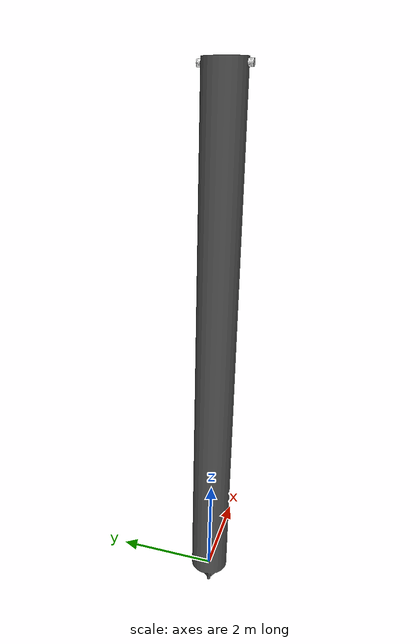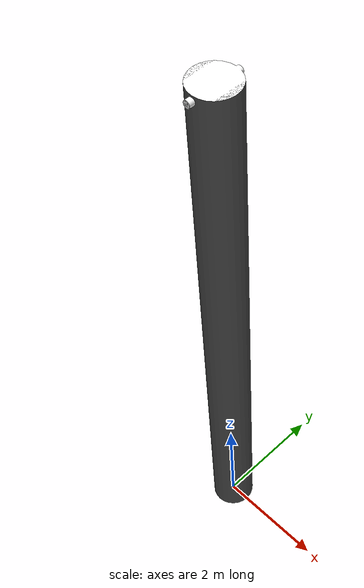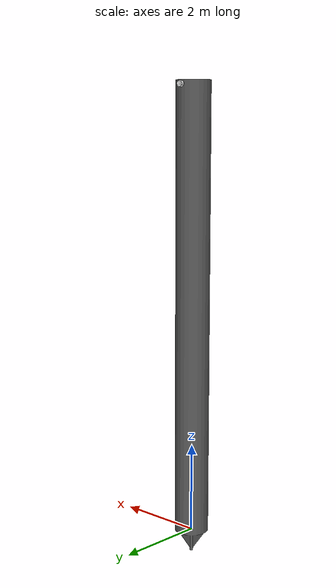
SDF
<?xml version="1.0" ?>
<sdf version='1.5'>
  <model name="pole">
      <static>true</static>
      <link name='pole_link'>
        <collision name='pole_collision'>
          <geometry>
            <box>
              <size>10 1 1</size>
            </box>
          </geometry>
        </collision>

        <visual name='pole_mesh'>
	  <cast_shadows>true</cast_shadows>
          <geometry>
            <mesh>
              <uri>model://pole/meshes/model.dae</uri>
            </mesh>
          </geometry>
        </visual>
      </link>
  </model>
</sdf>
